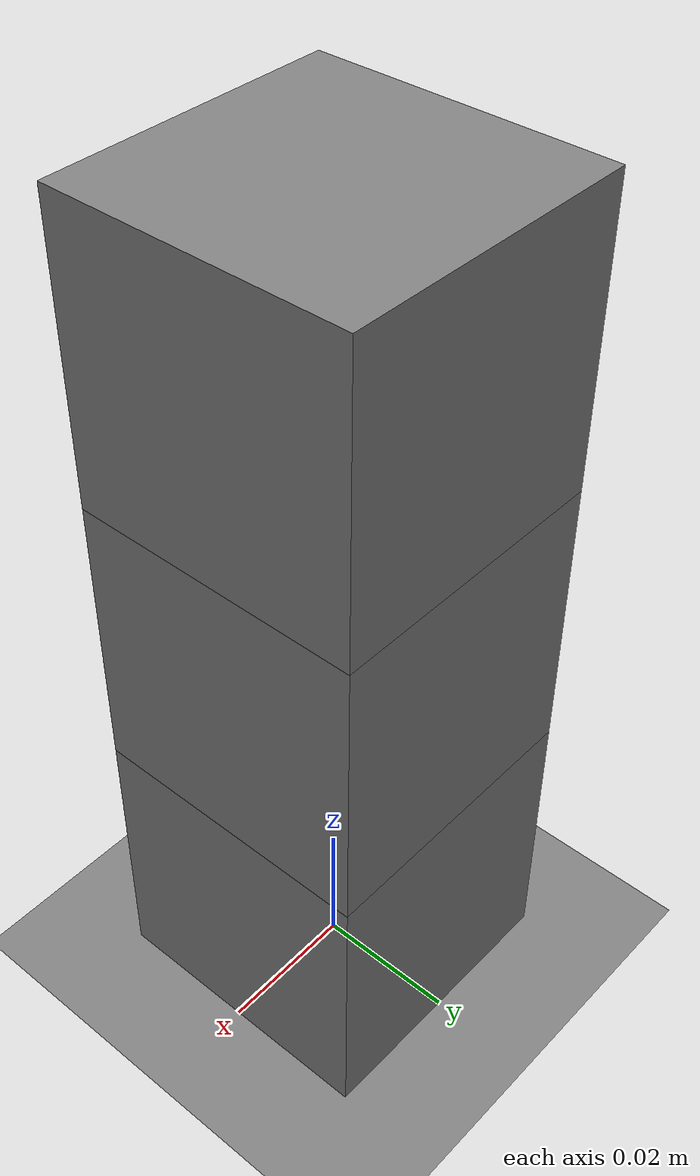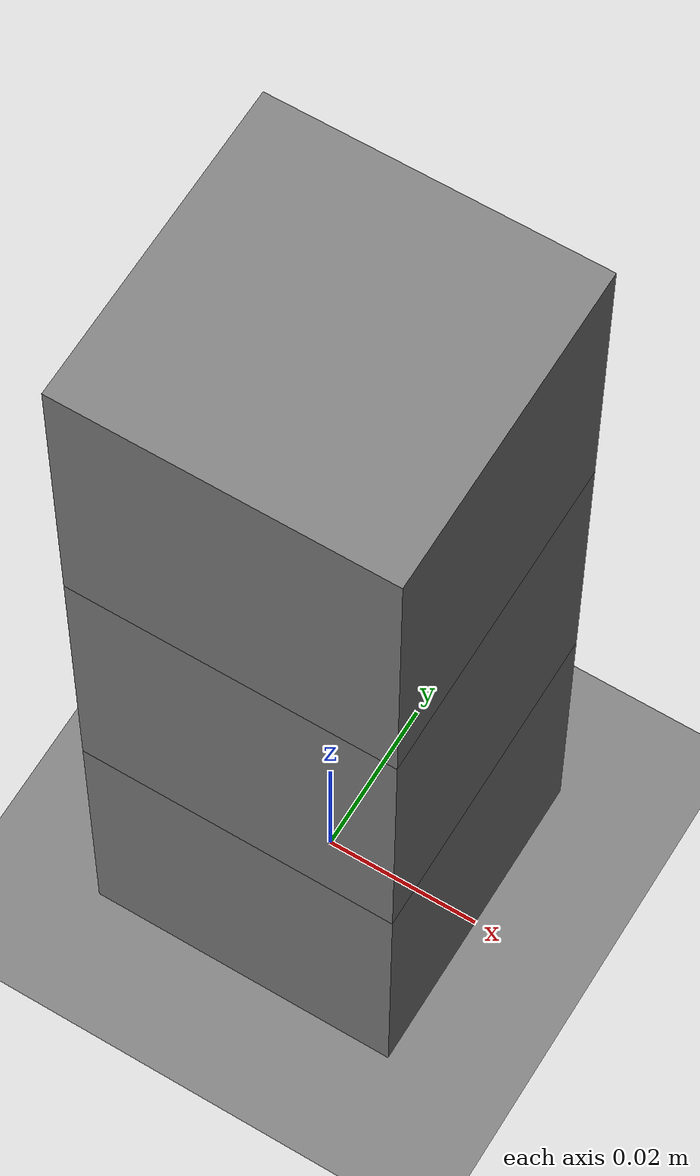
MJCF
<mujoco model="three_box_mujoco_anti_slip_ablation">
<option timestep="0.00025" gravity="0 0 -9.81" integrator="implicitfast" solver="Newton" cone="elliptic"
        iterations="100" tolerance="1e-12" impratio="10.0"
        noslip_iterations="0" noslip_tolerance="1e-12"/>
<size nconmax="256" njmax="1024"/>
<default><geom friction="0.5 0.005 0.0001" margin="0" gap="0"
              solref="0.002 1.0" solimp="0.9 0.95 0.001 0.5 2"/></default>
<worldbody><geom name="ground" type="plane" size="2 2 0.1"/><body name="box_0" pos="0 0 0.02"><freejoint/><geom name="box_0_geom" type="box" size="0.02 0.02 0.02" mass="1.0"/></body><body name="box_1" pos="0 0 0.06"><freejoint/><geom name="box_1_geom" type="box" size="0.02 0.02 0.02" mass="1.0"/></body><body name="box_2" pos="0 0 0.1"><freejoint/><geom name="box_2_geom" type="box" size="0.02 0.02 0.02" mass="1.0"/></body></worldbody>
<contact>
  <pair name="ground_bottom" geom1="ground" geom2="box_0_geom" friction="0.5 0.5 0.005 0.0001 0.0001" solref="0.002 1.0" solreffriction="0.008 1" solimp="0.9 0.95 0.001 0.5 2" margin="0" gap="0"/>
  <pair name="bottom_middle" geom1="box_0_geom" geom2="box_1_geom" friction="0.5 0.5 0.005 0.0001 0.0001" solref="0.002 1.0" solreffriction="0.008 1" solimp="0.9 0.95 0.001 0.5 2" margin="0" gap="0"/>
  <pair name="middle_top" geom1="box_1_geom" geom2="box_2_geom" friction="0.5 0.5 0.005 0.0001 0.0001" solref="0.002 1.0" solreffriction="0.008 1" solimp="0.9 0.95 0.001 0.5 2" margin="0" gap="0"/>
</contact>
</mujoco>
